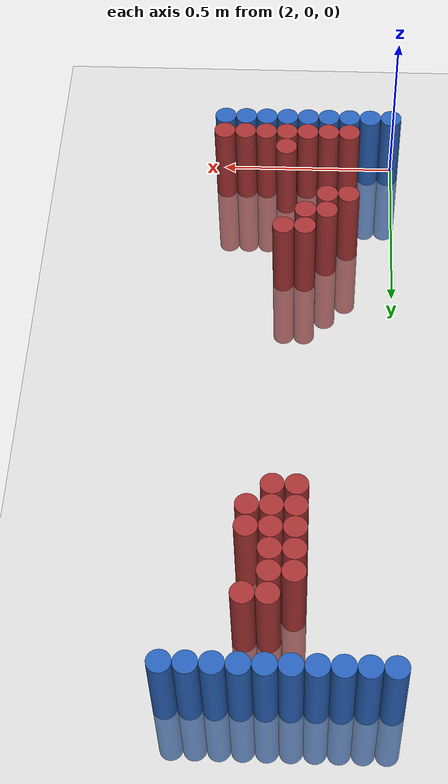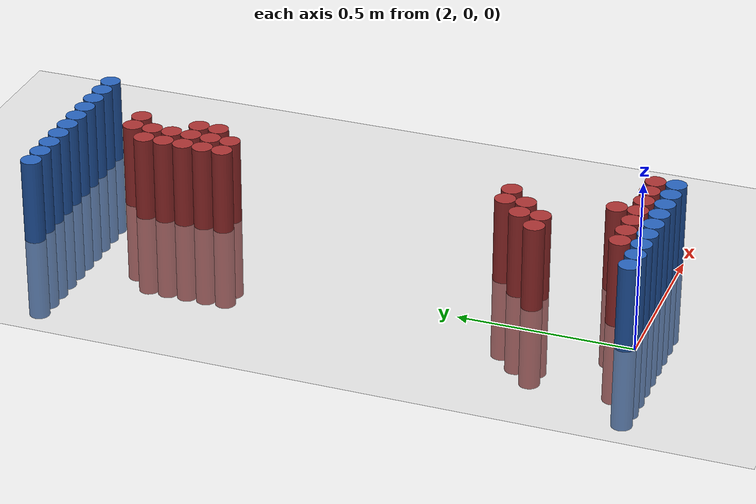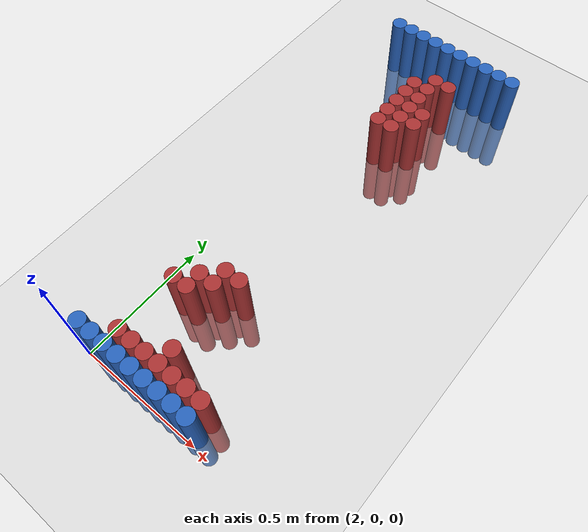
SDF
<sdf version="1.6">
 <world name="default">
  <model name="ground_plane">
   <static>1</static>
   <link name="link">
    <collision name="collision">
     <geometry><plane><normal>0 0 1</normal><size>100 100</size></plane></geometry>
     <surface><friction><ode><mu>100</mu><mu2>50</mu2></ode></friction></surface>
    </collision>
    <visual name="visual">
     <cast_shadows>0</cast_shadows>
     <geometry><plane><normal>0 0 1</normal><size>100 100</size></plane></geometry>
     <material>
      <script><uri>file://media/materials/scripts/gazebo.material</uri><name>Gazebo/Grey</name></script>
     </material>
    </visual>
   </link>
  </model>
  <model name="unit_cylinder_93">
   <static>1</static>
   <pose>2.010000 0.030000 0.000000 0.000000 0.000000 0.000000</pose>
   <link name="link">
    <inertial>
     <mass>1</mass>
     <inertia><ixx>0.145833</ixx><ixy>0</ixy><ixz>0</ixz><iyy>0.145833</iyy><iyz>0</iyz><izz>0.125</izz></inertia>
    </inertial>
    <collision name="collision">
     <geometry><cylinder><radius>0.030000</radius><length>0.5</length></cylinder></geometry>
    </collision>
    <visual name="visual">
     <geometry><cylinder><radius>0.030000</radius><length>0.5</length></cylinder></geometry>
     <material>
      <ambient>0.152000 0.379000 0.720000 1</ambient>
      <diffuse>0.152000 0.379000 0.720000 1</diffuse>
     </material>
     <material>
      <script><name>Gazebo/Grey</name><uri>file://media/materials/scripts/gazebo.material</uri></script>
     </material>
    </visual>
   </link>
  </model>
  <model name="unit_cylinder_94">
   <static>1</static>
   <pose>2.010000 1.770000 0.000000 0.000000 0.000000 0.000000</pose>
   <link name="link">
    <inertial>
     <mass>1</mass>
     <inertia><ixx>0.145833</ixx><ixy>0</ixy><ixz>0</ixz><iyy>0.145833</iyy><iyz>0</iyz><izz>0.125</izz></inertia>
    </inertial>
    <collision name="collision">
     <geometry><cylinder><radius>0.030000</radius><length>0.5</length></cylinder></geometry>
    </collision>
    <visual name="visual">
     <geometry><cylinder><radius>0.030000</radius><length>0.5</length></cylinder></geometry>
     <material>
      <ambient>0.152000 0.379000 0.720000 1</ambient>
      <diffuse>0.152000 0.379000 0.720000 1</diffuse>
     </material>
     <material>
      <script><name>Gazebo/Grey</name><uri>file://media/materials/scripts/gazebo.material</uri></script>
     </material>
    </visual>
   </link>
  </model>
  <model name="unit_cylinder_95">
   <static>1</static>
   <pose>2.070000 1.770000 0.000000 0.000000 0.000000 0.000000</pose>
   <link name="link">
    <inertial>
     <mass>1</mass>
     <inertia><ixx>0.145833</ixx><ixy>0</ixy><ixz>0</ixz><iyy>0.145833</iyy><iyz>0</iyz><izz>0.125</izz></inertia>
    </inertial>
    <collision name="collision">
     <geometry><cylinder><radius>0.030000</radius><length>0.5</length></cylinder></geometry>
    </collision>
    <visual name="visual">
     <geometry><cylinder><radius>0.030000</radius><length>0.5</length></cylinder></geometry>
     <material>
      <ambient>0.152000 0.379000 0.720000 1</ambient>
      <diffuse>0.152000 0.379000 0.720000 1</diffuse>
     </material>
     <material>
      <script><name>Gazebo/Grey</name><uri>file://media/materials/scripts/gazebo.material</uri></script>
     </material>
    </visual>
   </link>
  </model>
  <model name="unit_cylinder_96">
   <static>1</static>
   <pose>2.130000 1.770000 0.000000 0.000000 0.000000 0.000000</pose>
   <link name="link">
    <inertial>
     <mass>1</mass>
     <inertia><ixx>0.145833</ixx><ixy>0</ixy><ixz>0</ixz><iyy>0.145833</iyy><iyz>0</iyz><izz>0.125</izz></inertia>
    </inertial>
    <collision name="collision">
     <geometry><cylinder><radius>0.030000</radius><length>0.5</length></cylinder></geometry>
    </collision>
    <visual name="visual">
     <geometry><cylinder><radius>0.030000</radius><length>0.5</length></cylinder></geometry>
     <material>
      <ambient>0.152000 0.379000 0.720000 1</ambient>
      <diffuse>0.152000 0.379000 0.720000 1</diffuse>
     </material>
     <material>
      <script><name>Gazebo/Grey</name><uri>file://media/materials/scripts/gazebo.material</uri></script>
     </material>
    </visual>
   </link>
  </model>
  <model name="unit_cylinder_97">
   <static>1</static>
   <pose>2.190000 1.770000 0.000000 0.000000 0.000000 0.000000</pose>
   <link name="link">
    <inertial>
     <mass>1</mass>
     <inertia><ixx>0.145833</ixx><ixy>0</ixy><ixz>0</ixz><iyy>0.145833</iyy><iyz>0</iyz><izz>0.125</izz></inertia>
    </inertial>
    <collision name="collision">
     <geometry><cylinder><radius>0.030000</radius><length>0.5</length></cylinder></geometry>
    </collision>
    <visual name="visual">
     <geometry><cylinder><radius>0.030000</radius><length>0.5</length></cylinder></geometry>
     <material>
      <ambient>0.152000 0.379000 0.720000 1</ambient>
      <diffuse>0.152000 0.379000 0.720000 1</diffuse>
     </material>
     <material>
      <script><name>Gazebo/Grey</name><uri>file://media/materials/scripts/gazebo.material</uri></script>
     </material>
    </visual>
   </link>
  </model>
  <model name="unit_cylinder_98">
   <static>1</static>
   <pose>2.250000 1.770000 0.000000 0.000000 0.000000 0.000000</pose>
   <link name="link">
    <inertial>
     <mass>1</mass>
     <inertia><ixx>0.145833</ixx><ixy>0</ixy><ixz>0</ixz><iyy>0.145833</iyy><iyz>0</iyz><izz>0.125</izz></inertia>
    </inertial>
    <collision name="collision">
     <geometry><cylinder><radius>0.030000</radius><length>0.5</length></cylinder></geometry>
    </collision>
    <visual name="visual">
     <geometry><cylinder><radius>0.030000</radius><length>0.5</length></cylinder></geometry>
     <material>
      <ambient>0.152000 0.379000 0.720000 1</ambient>
      <diffuse>0.152000 0.379000 0.720000 1</diffuse>
     </material>
     <material>
      <script><name>Gazebo/Grey</name><uri>file://media/materials/scripts/gazebo.material</uri></script>
     </material>
    </visual>
   </link>
  </model>
  <model name="unit_cylinder_99">
   <static>1</static>
   <pose>2.310000 1.770000 0.000000 0.000000 0.000000 0.000000</pose>
   <link name="link">
    <inertial>
     <mass>1</mass>
     <inertia><ixx>0.145833</ixx><ixy>0</ixy><ixz>0</ixz><iyy>0.145833</iyy><iyz>0</iyz><izz>0.125</izz></inertia>
    </inertial>
    <collision name="collision">
     <geometry><cylinder><radius>0.030000</radius><length>0.5</length></cylinder></geometry>
    </collision>
    <visual name="visual">
     <geometry><cylinder><radius>0.030000</radius><length>0.5</length></cylinder></geometry>
     <material>
      <ambient>0.152000 0.379000 0.720000 1</ambient>
      <diffuse>0.152000 0.379000 0.720000 1</diffuse>
     </material>
     <material>
      <script><name>Gazebo/Grey</name><uri>file://media/materials/scripts/gazebo.material</uri></script>
     </material>
    </visual>
   </link>
  </model>
  <model name="unit_cylinder_100">
   <static>1</static>
   <pose>2.370000 1.770000 0.000000 0.000000 0.000000 0.000000</pose>
   <link name="link">
    <inertial>
     <mass>1</mass>
     <inertia><ixx>0.145833</ixx><ixy>0</ixy><ixz>0</ixz><iyy>0.145833</iyy><iyz>0</iyz><izz>0.125</izz></inertia>
    </inertial>
    <collision name="collision">
     <geometry><cylinder><radius>0.030000</radius><length>0.5</length></cylinder></geometry>
    </collision>
    <visual name="visual">
     <geometry><cylinder><radius>0.030000</radius><length>0.5</length></cylinder></geometry>
     <material>
      <ambient>0.152000 0.379000 0.720000 1</ambient>
      <diffuse>0.152000 0.379000 0.720000 1</diffuse>
     </material>
     <material>
      <script><name>Gazebo/Grey</name><uri>file://media/materials/scripts/gazebo.material</uri></script>
     </material>
    </visual>
   </link>
  </model>
  <model name="unit_cylinder_101">
   <static>1</static>
   <pose>2.430000 1.770000 0.000000 0.000000 0.000000 0.000000</pose>
   <link name="link">
    <inertial>
     <mass>1</mass>
     <inertia><ixx>0.145833</ixx><ixy>0</ixy><ixz>0</ixz><iyy>0.145833</iyy><iyz>0</iyz><izz>0.125</izz></inertia>
    </inertial>
    <collision name="collision">
     <geometry><cylinder><radius>0.030000</radius><length>0.5</length></cylinder></geometry>
    </collision>
    <visual name="visual">
     <geometry><cylinder><radius>0.030000</radius><length>0.5</length></cylinder></geometry>
     <material>
      <ambient>0.152000 0.379000 0.720000 1</ambient>
      <diffuse>0.152000 0.379000 0.720000 1</diffuse>
     </material>
     <material>
      <script><name>Gazebo/Grey</name><uri>file://media/materials/scripts/gazebo.material</uri></script>
     </material>
    </visual>
   </link>
  </model>
  <model name="unit_cylinder_102">
   <static>1</static>
   <pose>2.490000 1.770000 0.000000 0.000000 0.000000 0.000000</pose>
   <link name="link">
    <inertial>
     <mass>1</mass>
     <inertia><ixx>0.145833</ixx><ixy>0</ixy><ixz>0</ixz><iyy>0.145833</iyy><iyz>0</iyz><izz>0.125</izz></inertia>
    </inertial>
    <collision name="collision">
     <geometry><cylinder><radius>0.030000</radius><length>0.5</length></cylinder></geometry>
    </collision>
    <visual name="visual">
     <geometry><cylinder><radius>0.030000</radius><length>0.5</length></cylinder></geometry>
     <material>
      <ambient>0.152000 0.379000 0.720000 1</ambient>
      <diffuse>0.152000 0.379000 0.720000 1</diffuse>
     </material>
     <material>
      <script><name>Gazebo/Grey</name><uri>file://media/materials/scripts/gazebo.material</uri></script>
     </material>
    </visual>
   </link>
  </model>
  <model name="unit_cylinder_103">
   <static>1</static>
   <pose>2.550000 1.770000 0.000000 0.000000 0.000000 0.000000</pose>
   <link name="link">
    <inertial>
     <mass>1</mass>
     <inertia><ixx>0.145833</ixx><ixy>0</ixy><ixz>0</ixz><iyy>0.145833</iyy><iyz>0</iyz><izz>0.125</izz></inertia>
    </inertial>
    <collision name="collision">
     <geometry><cylinder><radius>0.030000</radius><length>0.5</length></cylinder></geometry>
    </collision>
    <visual name="visual">
     <geometry><cylinder><radius>0.030000</radius><length>0.5</length></cylinder></geometry>
     <material>
      <ambient>0.152000 0.379000 0.720000 1</ambient>
      <diffuse>0.152000 0.379000 0.720000 1</diffuse>
     </material>
     <material>
      <script><name>Gazebo/Grey</name><uri>file://media/materials/scripts/gazebo.material</uri></script>
     </material>
    </visual>
   </link>
  </model>
  <model name="unit_cylinder_137">
   <static>1</static>
   <pose>2.310000 1.590000 0.000000 0.000000 0.000000 0.000000</pose>
   <link name="link">
    <inertial>
     <mass>1</mass>
     <inertia><ixx>0.145833</ixx><ixy>0</ixy><ixz>0</ixz><iyy>0.145833</iyy><iyz>0</iyz><izz>0.125</izz></inertia>
    </inertial>
    <collision name="collision">
     <geometry><cylinder><radius>0.030000</radius><length>0.5</length></cylinder></geometry>
    </collision>
    <visual name="visual">
     <geometry><cylinder><radius>0.030000</radius><length>0.5</length></cylinder></geometry>
     <material>
      <ambient>0.648000 0.192000 0.192000 1</ambient>
      <diffuse>0.648000 0.192000 0.192000 1</diffuse>
     </material>
     <material>
      <script><name>Gazebo/Grey</name><uri>file://media/materials/scripts/gazebo.material</uri></script>
     </material>
    </visual>
   </link>
  </model>
  <model name="unit_cylinder_138">
   <static>1</static>
   <pose>2.370000 1.590000 0.000000 0.000000 0.000000 0.000000</pose>
   <link name="link">
    <inertial>
     <mass>1</mass>
     <inertia><ixx>0.145833</ixx><ixy>0</ixy><ixz>0</ixz><iyy>0.145833</iyy><iyz>0</iyz><izz>0.125</izz></inertia>
    </inertial>
    <collision name="collision">
     <geometry><cylinder><radius>0.030000</radius><length>0.5</length></cylinder></geometry>
    </collision>
    <visual name="visual">
     <geometry><cylinder><radius>0.030000</radius><length>0.5</length></cylinder></geometry>
     <material>
      <ambient>0.648000 0.192000 0.192000 1</ambient>
      <diffuse>0.648000 0.192000 0.192000 1</diffuse>
     </material>
     <material>
      <script><name>Gazebo/Grey</name><uri>file://media/materials/scripts/gazebo.material</uri></script>
     </material>
    </visual>
   </link>
  </model>
  <model name="unit_cylinder_140">
   <static>1</static>
   <pose>2.250000 1.530000 0.000000 0.000000 0.000000 0.000000</pose>
   <link name="link">
    <inertial>
     <mass>1</mass>
     <inertia><ixx>0.145833</ixx><ixy>0</ixy><ixz>0</ixz><iyy>0.145833</iyy><iyz>0</iyz><izz>0.125</izz></inertia>
    </inertial>
    <collision name="collision">
     <geometry><cylinder><radius>0.030000</radius><length>0.5</length></cylinder></geometry>
    </collision>
    <visual name="visual">
     <geometry><cylinder><radius>0.030000</radius><length>0.5</length></cylinder></geometry>
     <material>
      <ambient>0.648000 0.192000 0.192000 1</ambient>
      <diffuse>0.648000 0.192000 0.192000 1</diffuse>
     </material>
     <material>
      <script><name>Gazebo/Grey</name><uri>file://media/materials/scripts/gazebo.material</uri></script>
     </material>
    </visual>
   </link>
  </model>
  <model name="unit_cylinder_141">
   <static>1</static>
   <pose>2.310000 1.530000 0.000000 0.000000 0.000000 0.000000</pose>
   <link name="link">
    <inertial>
     <mass>1</mass>
     <inertia><ixx>0.145833</ixx><ixy>0</ixy><ixz>0</ixz><iyy>0.145833</iyy><iyz>0</iyz><izz>0.125</izz></inertia>
    </inertial>
    <collision name="collision">
     <geometry><cylinder><radius>0.030000</radius><length>0.5</length></cylinder></geometry>
    </collision>
    <visual name="visual">
     <geometry><cylinder><radius>0.030000</radius><length>0.5</length></cylinder></geometry>
     <material>
      <ambient>0.648000 0.192000 0.192000 1</ambient>
      <diffuse>0.648000 0.192000 0.192000 1</diffuse>
     </material>
     <material>
      <script><name>Gazebo/Grey</name><uri>file://media/materials/scripts/gazebo.material</uri></script>
     </material>
    </visual>
   </link>
  </model>
  <model name="unit_cylinder_145">
   <static>1</static>
   <pose>2.250000 1.470000 0.000000 0.000000 0.000000 0.000000</pose>
   <link name="link">
    <inertial>
     <mass>1</mass>
     <inertia><ixx>0.145833</ixx><ixy>0</ixy><ixz>0</ixz><iyy>0.145833</iyy><iyz>0</iyz><izz>0.125</izz></inertia>
    </inertial>
    <collision name="collision">
     <geometry><cylinder><radius>0.030000</radius><length>0.5</length></cylinder></geometry>
    </collision>
    <visual name="visual">
     <geometry><cylinder><radius>0.030000</radius><length>0.5</length></cylinder></geometry>
     <material>
      <ambient>0.648000 0.192000 0.192000 1</ambient>
      <diffuse>0.648000 0.192000 0.192000 1</diffuse>
     </material>
     <material>
      <script><name>Gazebo/Grey</name><uri>file://media/materials/scripts/gazebo.material</uri></script>
     </material>
    </visual>
   </link>
  </model>
  <model name="unit_cylinder_146">
   <static>1</static>
   <pose>2.310000 1.470000 0.000000 0.000000 0.000000 0.000000</pose>
   <link name="link">
    <inertial>
     <mass>1</mass>
     <inertia><ixx>0.145833</ixx><ixy>0</ixy><ixz>0</ixz><iyy>0.145833</iyy><iyz>0</iyz><izz>0.125</izz></inertia>
    </inertial>
    <collision name="collision">
     <geometry><cylinder><radius>0.030000</radius><length>0.5</length></cylinder></geometry>
    </collision>
    <visual name="visual">
     <geometry><cylinder><radius>0.030000</radius><length>0.5</length></cylinder></geometry>
     <material>
      <ambient>0.648000 0.192000 0.192000 1</ambient>
      <diffuse>0.648000 0.192000 0.192000 1</diffuse>
     </material>
     <material>
      <script><name>Gazebo/Grey</name><uri>file://media/materials/scripts/gazebo.material</uri></script>
     </material>
    </visual>
   </link>
  </model>
  <model name="unit_cylinder_148">
   <static>1</static>
   <pose>2.250000 1.410000 0.000000 0.000000 0.000000 0.000000</pose>
   <link name="link">
    <inertial>
     <mass>1</mass>
     <inertia><ixx>0.145833</ixx><ixy>0</ixy><ixz>0</ixz><iyy>0.145833</iyy><iyz>0</iyz><izz>0.125</izz></inertia>
    </inertial>
    <collision name="collision">
     <geometry><cylinder><radius>0.030000</radius><length>0.5</length></cylinder></geometry>
    </collision>
    <visual name="visual">
     <geometry><cylinder><radius>0.030000</radius><length>0.5</length></cylinder></geometry>
     <material>
      <ambient>0.648000 0.192000 0.192000 1</ambient>
      <diffuse>0.648000 0.192000 0.192000 1</diffuse>
     </material>
     <material>
      <script><name>Gazebo/Grey</name><uri>file://media/materials/scripts/gazebo.material</uri></script>
     </material>
    </visual>
   </link>
  </model>
  <model name="unit_cylinder_149">
   <static>1</static>
   <pose>2.310000 1.410000 0.000000 0.000000 0.000000 0.000000</pose>
   <link name="link">
    <inertial>
     <mass>1</mass>
     <inertia><ixx>0.145833</ixx><ixy>0</ixy><ixz>0</ixz><iyy>0.145833</iyy><iyz>0</iyz><izz>0.125</izz></inertia>
    </inertial>
    <collision name="collision">
     <geometry><cylinder><radius>0.030000</radius><length>0.5</length></cylinder></geometry>
    </collision>
    <visual name="visual">
     <geometry><cylinder><radius>0.030000</radius><length>0.5</length></cylinder></geometry>
     <material>
      <ambient>0.648000 0.192000 0.192000 1</ambient>
      <diffuse>0.648000 0.192000 0.192000 1</diffuse>
     </material>
     <material>
      <script><name>Gazebo/Grey</name><uri>file://media/materials/scripts/gazebo.material</uri></script>
     </material>
    </visual>
   </link>
  </model>
  <model name="unit_cylinder_150">
   <static>1</static>
   <pose>2.370000 1.410000 0.000000 0.000000 0.000000 0.000000</pose>
   <link name="link">
    <inertial>
     <mass>1</mass>
     <inertia><ixx>0.145833</ixx><ixy>0</ixy><ixz>0</ixz><iyy>0.145833</iyy><iyz>0</iyz><izz>0.125</izz></inertia>
    </inertial>
    <collision name="collision">
     <geometry><cylinder><radius>0.030000</radius><length>0.5</length></cylinder></geometry>
    </collision>
    <visual name="visual">
     <geometry><cylinder><radius>0.030000</radius><length>0.5</length></cylinder></geometry>
     <material>
      <ambient>0.648000 0.192000 0.192000 1</ambient>
      <diffuse>0.648000 0.192000 0.192000 1</diffuse>
     </material>
     <material>
      <script><name>Gazebo/Grey</name><uri>file://media/materials/scripts/gazebo.material</uri></script>
     </material>
    </visual>
   </link>
  </model>
  <model name="unit_cylinder_151">
   <static>1</static>
   <pose>2.250000 1.350000 0.000000 0.000000 0.000000 0.000000</pose>
   <link name="link">
    <inertial>
     <mass>1</mass>
     <inertia><ixx>0.145833</ixx><ixy>0</ixy><ixz>0</ixz><iyy>0.145833</iyy><iyz>0</iyz><izz>0.125</izz></inertia>
    </inertial>
    <collision name="collision">
     <geometry><cylinder><radius>0.030000</radius><length>0.5</length></cylinder></geometry>
    </collision>
    <visual name="visual">
     <geometry><cylinder><radius>0.030000</radius><length>0.5</length></cylinder></geometry>
     <material>
      <ambient>0.648000 0.192000 0.192000 1</ambient>
      <diffuse>0.648000 0.192000 0.192000 1</diffuse>
     </material>
     <material>
      <script><name>Gazebo/Grey</name><uri>file://media/materials/scripts/gazebo.material</uri></script>
     </material>
    </visual>
   </link>
  </model>
  <model name="unit_cylinder_152">
   <static>1</static>
   <pose>2.310000 1.350000 0.000000 0.000000 0.000000 0.000000</pose>
   <link name="link">
    <inertial>
     <mass>1</mass>
     <inertia><ixx>0.145833</ixx><ixy>0</ixy><ixz>0</ixz><iyy>0.145833</iyy><iyz>0</iyz><izz>0.125</izz></inertia>
    </inertial>
    <collision name="collision">
     <geometry><cylinder><radius>0.030000</radius><length>0.5</length></cylinder></geometry>
    </collision>
    <visual name="visual">
     <geometry><cylinder><radius>0.030000</radius><length>0.5</length></cylinder></geometry>
     <material>
      <ambient>0.648000 0.192000 0.192000 1</ambient>
      <diffuse>0.648000 0.192000 0.192000 1</diffuse>
     </material>
     <material>
      <script><name>Gazebo/Grey</name><uri>file://media/materials/scripts/gazebo.material</uri></script>
     </material>
    </visual>
   </link>
  </model>
  <model name="unit_cylinder_153">
   <static>1</static>
   <pose>2.370000 1.350000 0.000000 0.000000 0.000000 0.000000</pose>
   <link name="link">
    <inertial>
     <mass>1</mass>
     <inertia><ixx>0.145833</ixx><ixy>0</ixy><ixz>0</ixz><iyy>0.145833</iyy><iyz>0</iyz><izz>0.125</izz></inertia>
    </inertial>
    <collision name="collision">
     <geometry><cylinder><radius>0.030000</radius><length>0.5</length></cylinder></geometry>
    </collision>
    <visual name="visual">
     <geometry><cylinder><radius>0.030000</radius><length>0.5</length></cylinder></geometry>
     <material>
      <ambient>0.648000 0.192000 0.192000 1</ambient>
      <diffuse>0.648000 0.192000 0.192000 1</diffuse>
     </material>
     <material>
      <script><name>Gazebo/Grey</name><uri>file://media/materials/scripts/gazebo.material</uri></script>
     </material>
    </visual>
   </link>
  </model>
  <model name="unit_cylinder_156">
   <static>1</static>
   <pose>2.250000 1.290000 0.000000 0.000000 0.000000 0.000000</pose>
   <link name="link">
    <inertial>
     <mass>1</mass>
     <inertia><ixx>0.145833</ixx><ixy>0</ixy><ixz>0</ixz><iyy>0.145833</iyy><iyz>0</iyz><izz>0.125</izz></inertia>
    </inertial>
    <collision name="collision">
     <geometry><cylinder><radius>0.030000</radius><length>0.5</length></cylinder></geometry>
    </collision>
    <visual name="visual">
     <geometry><cylinder><radius>0.030000</radius><length>0.5</length></cylinder></geometry>
     <material>
      <ambient>0.648000 0.192000 0.192000 1</ambient>
      <diffuse>0.648000 0.192000 0.192000 1</diffuse>
     </material>
     <material>
      <script><name>Gazebo/Grey</name><uri>file://media/materials/scripts/gazebo.material</uri></script>
     </material>
    </visual>
   </link>
  </model>
  <model name="unit_cylinder_157">
   <static>1</static>
   <pose>2.310000 1.290000 0.000000 0.000000 0.000000 0.000000</pose>
   <link name="link">
    <inertial>
     <mass>1</mass>
     <inertia><ixx>0.145833</ixx><ixy>0</ixy><ixz>0</ixz><iyy>0.145833</iyy><iyz>0</iyz><izz>0.125</izz></inertia>
    </inertial>
    <collision name="collision">
     <geometry><cylinder><radius>0.030000</radius><length>0.5</length></cylinder></geometry>
    </collision>
    <visual name="visual">
     <geometry><cylinder><radius>0.030000</radius><length>0.5</length></cylinder></geometry>
     <material>
      <ambient>0.648000 0.192000 0.192000 1</ambient>
      <diffuse>0.648000 0.192000 0.192000 1</diffuse>
     </material>
     <material>
      <script><name>Gazebo/Grey</name><uri>file://media/materials/scripts/gazebo.material</uri></script>
     </material>
    </visual>
   </link>
  </model>
  <model name="unit_cylinder_208">
   <static>1</static>
   <pose>2.250000 0.450000 0.000000 0.000000 0.000000 0.000000</pose>
   <link name="link">
    <inertial>
     <mass>1</mass>
     <inertia><ixx>0.145833</ixx><ixy>0</ixy><ixz>0</ixz><iyy>0.145833</iyy><iyz>0</iyz><izz>0.125</izz></inertia>
    </inertial>
    <collision name="collision">
     <geometry><cylinder><radius>0.030000</radius><length>0.5</length></cylinder></geometry>
    </collision>
    <visual name="visual">
     <geometry><cylinder><radius>0.030000</radius><length>0.5</length></cylinder></geometry>
     <material>
      <ambient>0.648000 0.192000 0.192000 1</ambient>
      <diffuse>0.648000 0.192000 0.192000 1</diffuse>
     </material>
     <material>
      <script><name>Gazebo/Grey</name><uri>file://media/materials/scripts/gazebo.material</uri></script>
     </material>
    </visual>
   </link>
  </model>
  <model name="unit_cylinder_209">
   <static>1</static>
   <pose>2.310000 0.450000 0.000000 0.000000 0.000000 0.000000</pose>
   <link name="link">
    <inertial>
     <mass>1</mass>
     <inertia><ixx>0.145833</ixx><ixy>0</ixy><ixz>0</ixz><iyy>0.145833</iyy><iyz>0</iyz><izz>0.125</izz></inertia>
    </inertial>
    <collision name="collision">
     <geometry><cylinder><radius>0.030000</radius><length>0.5</length></cylinder></geometry>
    </collision>
    <visual name="visual">
     <geometry><cylinder><radius>0.030000</radius><length>0.5</length></cylinder></geometry>
     <material>
      <ambient>0.648000 0.192000 0.192000 1</ambient>
      <diffuse>0.648000 0.192000 0.192000 1</diffuse>
     </material>
     <material>
      <script><name>Gazebo/Grey</name><uri>file://media/materials/scripts/gazebo.material</uri></script>
     </material>
    </visual>
   </link>
  </model>
  <model name="unit_cylinder_210">
   <static>1</static>
   <pose>2.190000 0.390000 0.000000 0.000000 0.000000 0.000000</pose>
   <link name="link">
    <inertial>
     <mass>1</mass>
     <inertia><ixx>0.145833</ixx><ixy>0</ixy><ixz>0</ixz><iyy>0.145833</iyy><iyz>0</iyz><izz>0.125</izz></inertia>
    </inertial>
    <collision name="collision">
     <geometry><cylinder><radius>0.030000</radius><length>0.5</length></cylinder></geometry>
    </collision>
    <visual name="visual">
     <geometry><cylinder><radius>0.030000</radius><length>0.5</length></cylinder></geometry>
     <material>
      <ambient>0.648000 0.192000 0.192000 1</ambient>
      <diffuse>0.648000 0.192000 0.192000 1</diffuse>
     </material>
     <material>
      <script><name>Gazebo/Grey</name><uri>file://media/materials/scripts/gazebo.material</uri></script>
     </material>
    </visual>
   </link>
  </model>
  <model name="unit_cylinder_211">
   <static>1</static>
   <pose>2.250000 0.390000 0.000000 0.000000 0.000000 0.000000</pose>
   <link name="link">
    <inertial>
     <mass>1</mass>
     <inertia><ixx>0.145833</ixx><ixy>0</ixy><ixz>0</ixz><iyy>0.145833</iyy><iyz>0</iyz><izz>0.125</izz></inertia>
    </inertial>
    <collision name="collision">
     <geometry><cylinder><radius>0.030000</radius><length>0.5</length></cylinder></geometry>
    </collision>
    <visual name="visual">
     <geometry><cylinder><radius>0.030000</radius><length>0.5</length></cylinder></geometry>
     <material>
      <ambient>0.648000 0.192000 0.192000 1</ambient>
      <diffuse>0.648000 0.192000 0.192000 1</diffuse>
     </material>
     <material>
      <script><name>Gazebo/Grey</name><uri>file://media/materials/scripts/gazebo.material</uri></script>
     </material>
    </visual>
   </link>
  </model>
  <model name="unit_cylinder_215">
   <static>1</static>
   <pose>2.130000 0.330000 0.000000 0.000000 0.000000 0.000000</pose>
   <link name="link">
    <inertial>
     <mass>1</mass>
     <inertia><ixx>0.145833</ixx><ixy>0</ixy><ixz>0</ixz><iyy>0.145833</iyy><iyz>0</iyz><izz>0.125</izz></inertia>
    </inertial>
    <collision name="collision">
     <geometry><cylinder><radius>0.030000</radius><length>0.5</length></cylinder></geometry>
    </collision>
    <visual name="visual">
     <geometry><cylinder><radius>0.030000</radius><length>0.5</length></cylinder></geometry>
     <material>
      <ambient>0.648000 0.192000 0.192000 1</ambient>
      <diffuse>0.648000 0.192000 0.192000 1</diffuse>
     </material>
     <material>
      <script><name>Gazebo/Grey</name><uri>file://media/materials/scripts/gazebo.material</uri></script>
     </material>
    </visual>
   </link>
  </model>
  <model name="unit_cylinder_216">
   <static>1</static>
   <pose>2.190000 0.330000 0.000000 0.000000 0.000000 0.000000</pose>
   <link name="link">
    <inertial>
     <mass>1</mass>
     <inertia><ixx>0.145833</ixx><ixy>0</ixy><ixz>0</ixz><iyy>0.145833</iyy><iyz>0</iyz><izz>0.125</izz></inertia>
    </inertial>
    <collision name="collision">
     <geometry><cylinder><radius>0.030000</radius><length>0.5</length></cylinder></geometry>
    </collision>
    <visual name="visual">
     <geometry><cylinder><radius>0.030000</radius><length>0.5</length></cylinder></geometry>
     <material>
      <ambient>0.648000 0.192000 0.192000 1</ambient>
      <diffuse>0.648000 0.192000 0.192000 1</diffuse>
     </material>
     <material>
      <script><name>Gazebo/Grey</name><uri>file://media/materials/scripts/gazebo.material</uri></script>
     </material>
    </visual>
   </link>
  </model>
  <model name="unit_cylinder_225">
   <static>1</static>
   <pose>2.310000 0.150000 0.000000 0.000000 0.000000 0.000000</pose>
   <link name="link">
    <inertial>
     <mass>1</mass>
     <inertia><ixx>0.145833</ixx><ixy>0</ixy><ixz>0</ixz><iyy>0.145833</iyy><iyz>0</iyz><izz>0.125</izz></inertia>
    </inertial>
    <collision name="collision">
     <geometry><cylinder><radius>0.030000</radius><length>0.5</length></cylinder></geometry>
    </collision>
    <visual name="visual">
     <geometry><cylinder><radius>0.030000</radius><length>0.5</length></cylinder></geometry>
     <material>
      <ambient>0.648000 0.192000 0.192000 1</ambient>
      <diffuse>0.648000 0.192000 0.192000 1</diffuse>
     </material>
     <material>
      <script><name>Gazebo/Grey</name><uri>file://media/materials/scripts/gazebo.material</uri></script>
     </material>
    </visual>
   </link>
  </model>
  <model name="unit_cylinder_232">
   <static>1</static>
   <pose>2.130000 0.090000 0.000000 0.000000 0.000000 0.000000</pose>
   <link name="link">
    <inertial>
     <mass>1</mass>
     <inertia><ixx>0.145833</ixx><ixy>0</ixy><ixz>0</ixz><iyy>0.145833</iyy><iyz>0</iyz><izz>0.125</izz></inertia>
    </inertial>
    <collision name="collision">
     <geometry><cylinder><radius>0.030000</radius><length>0.5</length></cylinder></geometry>
    </collision>
    <visual name="visual">
     <geometry><cylinder><radius>0.030000</radius><length>0.5</length></cylinder></geometry>
     <material>
      <ambient>0.648000 0.192000 0.192000 1</ambient>
      <diffuse>0.648000 0.192000 0.192000 1</diffuse>
     </material>
     <material>
      <script><name>Gazebo/Grey</name><uri>file://media/materials/scripts/gazebo.material</uri></script>
     </material>
    </visual>
   </link>
  </model>
  <model name="unit_cylinder_233">
   <static>1</static>
   <pose>2.190000 0.090000 0.000000 0.000000 0.000000 0.000000</pose>
   <link name="link">
    <inertial>
     <mass>1</mass>
     <inertia><ixx>0.145833</ixx><ixy>0</ixy><ixz>0</ixz><iyy>0.145833</iyy><iyz>0</iyz><izz>0.125</izz></inertia>
    </inertial>
    <collision name="collision">
     <geometry><cylinder><radius>0.030000</radius><length>0.5</length></cylinder></geometry>
    </collision>
    <visual name="visual">
     <geometry><cylinder><radius>0.030000</radius><length>0.5</length></cylinder></geometry>
     <material>
      <ambient>0.648000 0.192000 0.192000 1</ambient>
      <diffuse>0.648000 0.192000 0.192000 1</diffuse>
     </material>
     <material>
      <script><name>Gazebo/Grey</name><uri>file://media/materials/scripts/gazebo.material</uri></script>
     </material>
    </visual>
   </link>
  </model>
  <model name="unit_cylinder_234">
   <static>1</static>
   <pose>2.250000 0.090000 0.000000 0.000000 0.000000 0.000000</pose>
   <link name="link">
    <inertial>
     <mass>1</mass>
     <inertia><ixx>0.145833</ixx><ixy>0</ixy><ixz>0</ixz><iyy>0.145833</iyy><iyz>0</iyz><izz>0.125</izz></inertia>
    </inertial>
    <collision name="collision">
     <geometry><cylinder><radius>0.030000</radius><length>0.5</length></cylinder></geometry>
    </collision>
    <visual name="visual">
     <geometry><cylinder><radius>0.030000</radius><length>0.5</length></cylinder></geometry>
     <material>
      <ambient>0.648000 0.192000 0.192000 1</ambient>
      <diffuse>0.648000 0.192000 0.192000 1</diffuse>
     </material>
     <material>
      <script><name>Gazebo/Grey</name><uri>file://media/materials/scripts/gazebo.material</uri></script>
     </material>
    </visual>
   </link>
  </model>
  <model name="unit_cylinder_235">
   <static>1</static>
   <pose>2.310000 0.090000 0.000000 0.000000 0.000000 0.000000</pose>
   <link name="link">
    <inertial>
     <mass>1</mass>
     <inertia><ixx>0.145833</ixx><ixy>0</ixy><ixz>0</ixz><iyy>0.145833</iyy><iyz>0</iyz><izz>0.125</izz></inertia>
    </inertial>
    <collision name="collision">
     <geometry><cylinder><radius>0.030000</radius><length>0.5</length></cylinder></geometry>
    </collision>
    <visual name="visual">
     <geometry><cylinder><radius>0.030000</radius><length>0.5</length></cylinder></geometry>
     <material>
      <ambient>0.648000 0.192000 0.192000 1</ambient>
      <diffuse>0.648000 0.192000 0.192000 1</diffuse>
     </material>
     <material>
      <script><name>Gazebo/Grey</name><uri>file://media/materials/scripts/gazebo.material</uri></script>
     </material>
    </visual>
   </link>
  </model>
  <model name="unit_cylinder_236">
   <static>1</static>
   <pose>2.370000 0.090000 0.000000 0.000000 0.000000 0.000000</pose>
   <link name="link">
    <inertial>
     <mass>1</mass>
     <inertia><ixx>0.145833</ixx><ixy>0</ixy><ixz>0</ixz><iyy>0.145833</iyy><iyz>0</iyz><izz>0.125</izz></inertia>
    </inertial>
    <collision name="collision">
     <geometry><cylinder><radius>0.030000</radius><length>0.5</length></cylinder></geometry>
    </collision>
    <visual name="visual">
     <geometry><cylinder><radius>0.030000</radius><length>0.5</length></cylinder></geometry>
     <material>
      <ambient>0.648000 0.192000 0.192000 1</ambient>
      <diffuse>0.648000 0.192000 0.192000 1</diffuse>
     </material>
     <material>
      <script><name>Gazebo/Grey</name><uri>file://media/materials/scripts/gazebo.material</uri></script>
     </material>
    </visual>
   </link>
  </model>
  <model name="unit_cylinder_237">
   <static>1</static>
   <pose>2.430000 0.090000 0.000000 0.000000 0.000000 0.000000</pose>
   <link name="link">
    <inertial>
     <mass>1</mass>
     <inertia><ixx>0.145833</ixx><ixy>0</ixy><ixz>0</ixz><iyy>0.145833</iyy><iyz>0</iyz><izz>0.125</izz></inertia>
    </inertial>
    <collision name="collision">
     <geometry><cylinder><radius>0.030000</radius><length>0.5</length></cylinder></geometry>
    </collision>
    <visual name="visual">
     <geometry><cylinder><radius>0.030000</radius><length>0.5</length></cylinder></geometry>
     <material>
      <ambient>0.648000 0.192000 0.192000 1</ambient>
      <diffuse>0.648000 0.192000 0.192000 1</diffuse>
     </material>
     <material>
      <script><name>Gazebo/Grey</name><uri>file://media/materials/scripts/gazebo.material</uri></script>
     </material>
    </visual>
   </link>
  </model>
  <model name="unit_cylinder_238">
   <static>1</static>
   <pose>2.490000 0.090000 0.000000 0.000000 0.000000 0.000000</pose>
   <link name="link">
    <inertial>
     <mass>1</mass>
     <inertia><ixx>0.145833</ixx><ixy>0</ixy><ixz>0</ixz><iyy>0.145833</iyy><iyz>0</iyz><izz>0.125</izz></inertia>
    </inertial>
    <collision name="collision">
     <geometry><cylinder><radius>0.030000</radius><length>0.5</length></cylinder></geometry>
    </collision>
    <visual name="visual">
     <geometry><cylinder><radius>0.030000</radius><length>0.5</length></cylinder></geometry>
     <material>
      <ambient>0.648000 0.192000 0.192000 1</ambient>
      <diffuse>0.648000 0.192000 0.192000 1</diffuse>
     </material>
     <material>
      <script><name>Gazebo/Grey</name><uri>file://media/materials/scripts/gazebo.material</uri></script>
     </material>
    </visual>
   </link>
  </model>
  <model name="unit_cylinder_250">
   <static>1</static>
   <pose>2.070000 0.030000 0.000000 0.000000 0.000000 0.000000</pose>
   <link name="link">
    <inertial>
     <mass>1</mass>
     <inertia><ixx>0.145833</ixx><ixy>0</ixy><ixz>0</ixz><iyy>0.145833</iyy><iyz>0</iyz><izz>0.125</izz></inertia>
    </inertial>
    <collision name="collision">
     <geometry><cylinder><radius>0.030000</radius><length>0.5</length></cylinder></geometry>
    </collision>
    <visual name="visual">
     <geometry><cylinder><radius>0.030000</radius><length>0.5</length></cylinder></geometry>
     <material>
      <ambient>0.152000 0.379000 0.720000 1</ambient>
      <diffuse>0.152000 0.379000 0.720000 1</diffuse>
     </material>
     <material>
      <script><name>Gazebo/Grey</name><uri>file://media/materials/scripts/gazebo.material</uri></script>
     </material>
    </visual>
   </link>
  </model>
  <model name="unit_cylinder_251">
   <static>1</static>
   <pose>2.130000 0.030000 0.000000 0.000000 0.000000 0.000000</pose>
   <link name="link">
    <inertial>
     <mass>1</mass>
     <inertia><ixx>0.145833</ixx><ixy>0</ixy><ixz>0</ixz><iyy>0.145833</iyy><iyz>0</iyz><izz>0.125</izz></inertia>
    </inertial>
    <collision name="collision">
     <geometry><cylinder><radius>0.030000</radius><length>0.5</length></cylinder></geometry>
    </collision>
    <visual name="visual">
     <geometry><cylinder><radius>0.030000</radius><length>0.5</length></cylinder></geometry>
     <material>
      <ambient>0.152000 0.379000 0.720000 1</ambient>
      <diffuse>0.152000 0.379000 0.720000 1</diffuse>
     </material>
     <material>
      <script><name>Gazebo/Grey</name><uri>file://media/materials/scripts/gazebo.material</uri></script>
     </material>
    </visual>
   </link>
  </model>
  <model name="unit_cylinder_252">
   <static>1</static>
   <pose>2.190000 0.030000 0.000000 0.000000 0.000000 0.000000</pose>
   <link name="link">
    <inertial>
     <mass>1</mass>
     <inertia><ixx>0.145833</ixx><ixy>0</ixy><ixz>0</ixz><iyy>0.145833</iyy><iyz>0</iyz><izz>0.125</izz></inertia>
    </inertial>
    <collision name="collision">
     <geometry><cylinder><radius>0.030000</radius><length>0.5</length></cylinder></geometry>
    </collision>
    <visual name="visual">
     <geometry><cylinder><radius>0.030000</radius><length>0.5</length></cylinder></geometry>
     <material>
      <ambient>0.152000 0.379000 0.720000 1</ambient>
      <diffuse>0.152000 0.379000 0.720000 1</diffuse>
     </material>
     <material>
      <script><name>Gazebo/Grey</name><uri>file://media/materials/scripts/gazebo.material</uri></script>
     </material>
    </visual>
   </link>
  </model>
  <model name="unit_cylinder_253">
   <static>1</static>
   <pose>2.250000 0.030000 0.000000 0.000000 0.000000 0.000000</pose>
   <link name="link">
    <inertial>
     <mass>1</mass>
     <inertia><ixx>0.145833</ixx><ixy>0</ixy><ixz>0</ixz><iyy>0.145833</iyy><iyz>0</iyz><izz>0.125</izz></inertia>
    </inertial>
    <collision name="collision">
     <geometry><cylinder><radius>0.030000</radius><length>0.5</length></cylinder></geometry>
    </collision>
    <visual name="visual">
     <geometry><cylinder><radius>0.030000</radius><length>0.5</length></cylinder></geometry>
     <material>
      <ambient>0.152000 0.379000 0.720000 1</ambient>
      <diffuse>0.152000 0.379000 0.720000 1</diffuse>
     </material>
     <material>
      <script><name>Gazebo/Grey</name><uri>file://media/materials/scripts/gazebo.material</uri></script>
     </material>
    </visual>
   </link>
  </model>
  <model name="unit_cylinder_254">
   <static>1</static>
   <pose>2.310000 0.030000 0.000000 0.000000 0.000000 0.000000</pose>
   <link name="link">
    <inertial>
     <mass>1</mass>
     <inertia><ixx>0.145833</ixx><ixy>0</ixy><ixz>0</ixz><iyy>0.145833</iyy><iyz>0</iyz><izz>0.125</izz></inertia>
    </inertial>
    <collision name="collision">
     <geometry><cylinder><radius>0.030000</radius><length>0.5</length></cylinder></geometry>
    </collision>
    <visual name="visual">
     <geometry><cylinder><radius>0.030000</radius><length>0.5</length></cylinder></geometry>
     <material>
      <ambient>0.152000 0.379000 0.720000 1</ambient>
      <diffuse>0.152000 0.379000 0.720000 1</diffuse>
     </material>
     <material>
      <script><name>Gazebo/Grey</name><uri>file://media/materials/scripts/gazebo.material</uri></script>
     </material>
    </visual>
   </link>
  </model>
  <model name="unit_cylinder_255">
   <static>1</static>
   <pose>2.370000 0.030000 0.000000 0.000000 0.000000 0.000000</pose>
   <link name="link">
    <inertial>
     <mass>1</mass>
     <inertia><ixx>0.145833</ixx><ixy>0</ixy><ixz>0</ixz><iyy>0.145833</iyy><iyz>0</iyz><izz>0.125</izz></inertia>
    </inertial>
    <collision name="collision">
     <geometry><cylinder><radius>0.030000</radius><length>0.5</length></cylinder></geometry>
    </collision>
    <visual name="visual">
     <geometry><cylinder><radius>0.030000</radius><length>0.5</length></cylinder></geometry>
     <material>
      <ambient>0.152000 0.379000 0.720000 1</ambient>
      <diffuse>0.152000 0.379000 0.720000 1</diffuse>
     </material>
     <material>
      <script><name>Gazebo/Grey</name><uri>file://media/materials/scripts/gazebo.material</uri></script>
     </material>
    </visual>
   </link>
  </model>
  <model name="unit_cylinder_256">
   <static>1</static>
   <pose>2.430000 0.030000 0.000000 0.000000 0.000000 0.000000</pose>
   <link name="link">
    <inertial>
     <mass>1</mass>
     <inertia><ixx>0.145833</ixx><ixy>0</ixy><ixz>0</ixz><iyy>0.145833</iyy><iyz>0</iyz><izz>0.125</izz></inertia>
    </inertial>
    <collision name="collision">
     <geometry><cylinder><radius>0.030000</radius><length>0.5</length></cylinder></geometry>
    </collision>
    <visual name="visual">
     <geometry><cylinder><radius>0.030000</radius><length>0.5</length></cylinder></geometry>
     <material>
      <ambient>0.152000 0.379000 0.720000 1</ambient>
      <diffuse>0.152000 0.379000 0.720000 1</diffuse>
     </material>
     <material>
      <script><name>Gazebo/Grey</name><uri>file://media/materials/scripts/gazebo.material</uri></script>
     </material>
    </visual>
   </link>
  </model>
  <model name="unit_cylinder_257">
   <static>1</static>
   <pose>2.490000 0.030000 0.000000 0.000000 0.000000 0.000000</pose>
   <link name="link">
    <inertial>
     <mass>1</mass>
     <inertia><ixx>0.145833</ixx><ixy>0</ixy><ixz>0</ixz><iyy>0.145833</iyy><iyz>0</iyz><izz>0.125</izz></inertia>
    </inertial>
    <collision name="collision">
     <geometry><cylinder><radius>0.030000</radius><length>0.5</length></cylinder></geometry>
    </collision>
    <visual name="visual">
     <geometry><cylinder><radius>0.030000</radius><length>0.5</length></cylinder></geometry>
     <material>
      <ambient>0.152000 0.379000 0.720000 1</ambient>
      <diffuse>0.152000 0.379000 0.720000 1</diffuse>
     </material>
     <material>
      <script><name>Gazebo/Grey</name><uri>file://media/materials/scripts/gazebo.material</uri></script>
     </material>
    </visual>
   </link>
  </model>
 </world>
</sdf>
